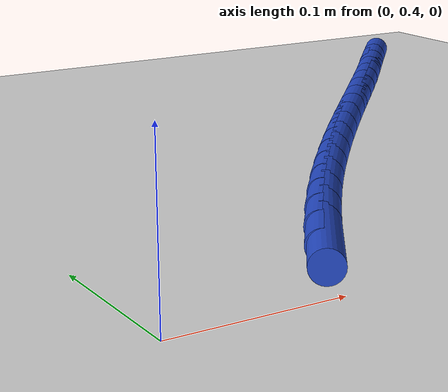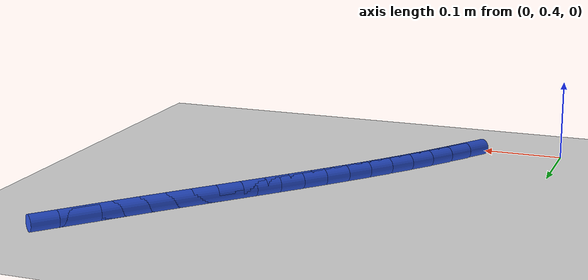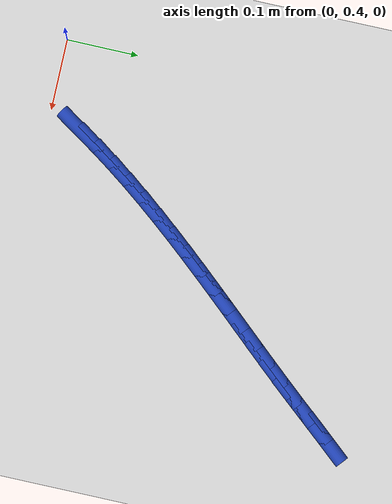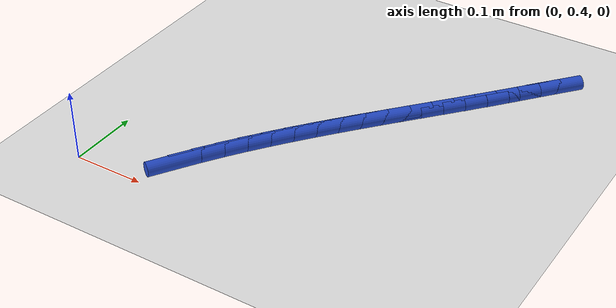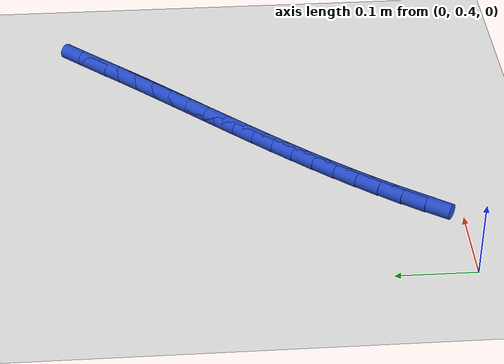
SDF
<sdf version="1.6">
 <world name="default">
  <model name="ground_plane">
   <static>1</static>
   <link name="link">
    <collision name="collision">
     <geometry><plane><normal>0 0 1</normal><size>100 100</size></plane></geometry>
     <surface><friction><ode><mu>100</mu><mu2>50</mu2></ode></friction></surface>
    </collision>
    <visual name="visual">
     <cast_shadows>0</cast_shadows>
     <geometry><plane><normal>0 0 1</normal><size>100 100</size></plane></geometry>
     <material>
      <script><uri>file://media/materials/scripts/gazebo.material</uri><name>Gazebo/WhiteGlow</name></script>
     </material>
    </visual>
   </link>
  </model>
  <model name="line">
   <link name="link_15">
    <pose>0.12150770521950315 0.4489912007203753 0.01 0 1.57 0.9923568375646948</pose>
    <collision name="collision">
     <geometry><cylinder><radius>0.01</radius><length>0.08</length></cylinder></geometry>
    </collision>
    <visual name="visual">
     <material>
      <script><name>Gazebo/Blue</name><uri>file://media/materials/scripts/gazebo.material</uri></script>
     </material>
     <geometry><cylinder><radius>0.01</radius><length>0.08</length></cylinder></geometry>
    </visual>
   </link>
   <link name="link_16">
    <pose>0.13879972871519883 0.4754745125923115 0.01 0 1.57 0.9649662804064286</pose>
    <collision name="collision">
     <geometry><cylinder><radius>0.01</radius><length>0.08</length></cylinder></geometry>
    </collision>
    <visual name="visual">
     <material>
      <script><name>Gazebo/Blue</name><uri>file://media/materials/scripts/gazebo.material</uri></script>
     </material>
     <geometry><cylinder><radius>0.01</radius><length>0.08</length></cylinder></geometry>
    </visual>
   </link>
   <link name="link_17">
    <pose>0.15683151944480056 0.5015045564783505 0.01 0 1.57 0.9406188449625145</pose>
    <collision name="collision">
     <geometry><cylinder><radius>0.01</radius><length>0.08</length></cylinder></geometry>
    </collision>
    <visual name="visual">
     <material>
      <script><name>Gazebo/Blue</name><uri>file://media/materials/scripts/gazebo.material</uri></script>
     </material>
     <geometry><cylinder><radius>0.01</radius><length>0.08</length></cylinder></geometry>
    </visual>
   </link>
   <link name="link_18">
    <pose>0.17549656442713457 0.5270946140106734 0.01 0 1.57 0.9192242530750864</pose>
    <collision name="collision">
     <geometry><cylinder><radius>0.01</radius><length>0.08</length></cylinder></geometry>
    </collision>
    <visual name="visual">
     <material>
      <script><name>Gazebo/Blue</name><uri>file://media/materials/scripts/gazebo.material</uri></script>
     </material>
     <geometry><cylinder><radius>0.01</radius><length>0.08</length></cylinder></geometry>
    </visual>
   </link>
   <link name="link_19">
    <pose>0.19468835068102744 0.552257966821462 0.01 0 1.57 0.9007025164065035</pose>
    <collision name="collision">
     <geometry><cylinder><radius>0.01</radius><length>0.08</length></cylinder></geometry>
    </collision>
    <visual name="visual">
     <material>
      <script><name>Gazebo/Blue</name><uri>file://media/materials/scripts/gazebo.material</uri></script>
     </material>
     <geometry><cylinder><radius>0.01</radius><length>0.08</length></cylinder></geometry>
    </visual>
   </link>
   <link name="link_20">
    <pose>0.21430036522530516 0.5770078965428969 0.01 0 1.57 0.8849886950662461</pose>
    <collision name="collision">
     <geometry><cylinder><radius>0.01</radius><length>0.08</length></cylinder></geometry>
    </collision>
    <visual name="visual">
     <material>
      <script><name>Gazebo/Blue</name><uri>file://media/materials/scripts/gazebo.material</uri></script>
     </material>
     <geometry><cylinder><radius>0.01</radius><length>0.08</length></cylinder></geometry>
    </visual>
   </link>
   <link name="link_21">
    <pose>0.23422609507879427 0.60135768480716 0.01 0 1.57 0.8719955283070995</pose>
    <collision name="collision">
     <geometry><cylinder><radius>0.01</radius><length>0.08</length></cylinder></geometry>
    </collision>
    <visual name="visual">
     <material>
      <script><name>Gazebo/Blue</name><uri>file://media/materials/scripts/gazebo.material</uri></script>
     </material>
     <geometry><cylinder><radius>0.01</radius><length>0.08</length></cylinder></geometry>
    </visual>
   </link>
   <link name="link_22">
    <pose>0.25436846574544564 0.6253298348117089 0.01 0 1.57 0.8615007942577673</pose>
    <collision name="collision">
     <geometry><cylinder><radius>0.01</radius><length>0.08</length></cylinder></geometry>
    </collision>
    <visual name="visual">
     <material>
      <script><name>Gazebo/Blue</name><uri>file://media/materials/scripts/gazebo.material</uri></script>
     </material>
     <geometry><cylinder><radius>0.01</radius><length>0.08</length></cylinder></geometry>
    </visual>
   </link>
   <link name="link_23">
    <pose>0.27468400698269424 0.6489992220485035 0.01 0 1.57 0.8534972518807313</pose>
    <collision name="collision">
     <geometry><cylinder><radius>0.01</radius><length>0.08</length></cylinder></geometry>
    </collision>
    <visual name="visual">
     <material>
      <script><name>Gazebo/Blue</name><uri>file://media/materials/scripts/gazebo.material</uri></script>
     </material>
     <geometry><cylinder><radius>0.01</radius><length>0.08</length></cylinder></geometry>
    </visual>
   </link>
   <link name="link_24">
    <pose>0.29514814793866956 0.672459187045224 0.01 0 1.57 0.848042734042865</pose>
    <collision name="collision">
     <geometry><cylinder><radius>0.01</radius><length>0.08</length></cylinder></geometry>
    </collision>
    <visual name="visual">
     <material>
      <script><name>Gazebo/Blue</name><uri>file://media/materials/scripts/gazebo.material</uri></script>
     </material>
     <geometry><cylinder><radius>0.01</radius><length>0.08</length></cylinder></geometry>
    </visual>
   </link>
   <link name="link_25">
    <pose>0.3157363390555596 0.6958030911342187 0.01 0 1.57 0.8451673537912384</pose>
    <collision name="collision">
     <geometry><cylinder><radius>0.01</radius><length>0.08</length></cylinder></geometry>
    </collision>
    <visual name="visual">
     <material>
      <script><name>Gazebo/Blue</name><uri>file://media/materials/scripts/gazebo.material</uri></script>
     </material>
     <geometry><cylinder><radius>0.01</radius><length>0.08</length></cylinder></geometry>
    </visual>
   </link>
   <link name="link_26">
    <pose>0.3364240307755524 0.7191242956478366 0.01 0 1.57 0.8448739147285522</pose>
    <collision name="collision">
     <geometry><cylinder><radius>0.01</radius><length>0.08</length></cylinder></geometry>
    </collision>
    <visual name="visual">
     <material>
      <script><name>Gazebo/Blue</name><uri>file://media/materials/scripts/gazebo.material</uri></script>
     </material>
     <geometry><cylinder><radius>0.01</radius><length>0.08</length></cylinder></geometry>
    </visual>
   </link>
   <link name="link_27">
    <pose>0.35718667354083594 0.7425161619184262 0.01 0 1.57 0.8471386394500002</pose>
    <collision name="collision">
     <geometry><cylinder><radius>0.01</radius><length>0.08</length></cylinder></geometry>
    </collision>
    <visual name="visual">
     <material>
      <script><name>Gazebo/Blue</name><uri>file://media/materials/scripts/gazebo.material</uri></script>
     </material>
     <geometry><cylinder><radius>0.01</radius><length>0.08</length></cylinder></geometry>
    </visual>
   </link>
   <link name="link_28">
    <pose>0.3779997177935982 0.7660720512783356 0.01 0 1.57 0.8519120639241413</pose>
    <collision name="collision">
     <geometry><cylinder><radius>0.01</radius><length>0.08</length></cylinder></geometry>
    </collision>
    <visual name="visual">
     <material>
      <script><name>Gazebo/Blue</name><uri>file://media/materials/scripts/gazebo.material</uri></script>
     </material>
     <geometry><cylinder><radius>0.01</radius><length>0.08</length></cylinder></geometry>
    </visual>
   </link>
   <link name="link_29">
    <pose>0.39883861397602693 0.7898853250599132 0.01 0 1.57 0.859120080386922</pose>
    <collision name="collision">
     <geometry><cylinder><radius>0.01</radius><length>0.08</length></cylinder></geometry>
    </collision>
    <visual name="visual">
     <material>
      <script><name>Gazebo/Blue</name><uri>file://media/materials/scripts/gazebo.material</uri></script>
     </material>
     <geometry><cylinder><radius>0.01</radius><length>0.08</length></cylinder></geometry>
    </visual>
   </link>
   <link name="link_30">
    <pose>0.4196788125303105 0.8140493445955079 0.01 0 1.57 0.8673544095922836</pose>
    <collision name="collision">
     <geometry><cylinder><radius>0.01</radius><length>0.08</length></cylinder></geometry>
    </collision>
    <visual name="visual">
     <material>
      <script><name>Gazebo/Blue</name><uri>file://media/materials/scripts/gazebo.material</uri></script>
     </material>
     <geometry><cylinder><radius>0.01</radius><length>0.08</length></cylinder></geometry>
    </visual>
   </link>
   <link name="link_31">
    <pose>0.44051322497126755 0.8386127440083433 0.01 0 1.57 0.8689951062572088</pose>
    <collision name="collision">
     <geometry><cylinder><radius>0.01</radius><length>0.08</length></cylinder></geometry>
    </collision>
    <visual name="visual">
     <material>
      <script><name>Gazebo/Blue</name><uri>file://media/materials/scripts/gazebo.material</uri></script>
     </material>
     <geometry><cylinder><radius>0.01</radius><length>0.08</length></cylinder></geometry>
    </visual>
   </link>
   <link name="link_32">
    <pose>0.461436617008372 0.8633632539845622 0.01 0 1.57 0.8614293373775493</pose>
    <collision name="collision">
     <geometry><cylinder><radius>0.01</radius><length>0.08</length></cylinder></geometry>
    </collision>
    <visual name="visual">
     <material>
      <script><name>Gazebo/Blue</name><uri>file://media/materials/scripts/gazebo.material</uri></script>
     </material>
     <geometry><cylinder><radius>0.01</radius><length>0.08</length></cylinder></geometry>
    </visual>
   </link>
  </model>
 </world>
</sdf>
